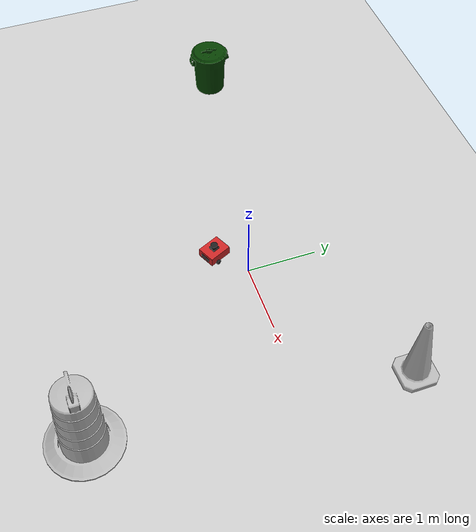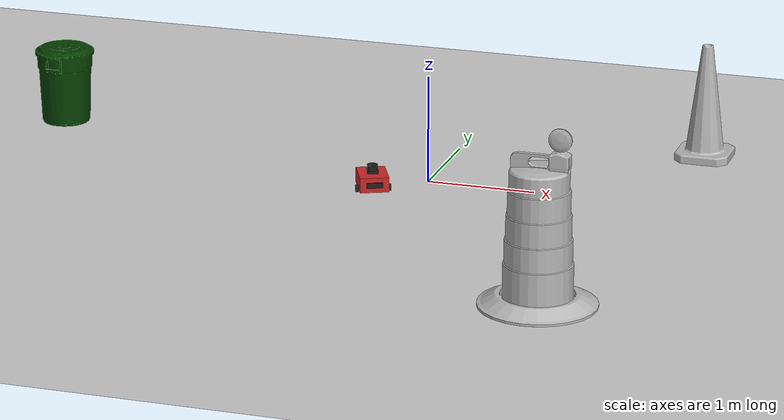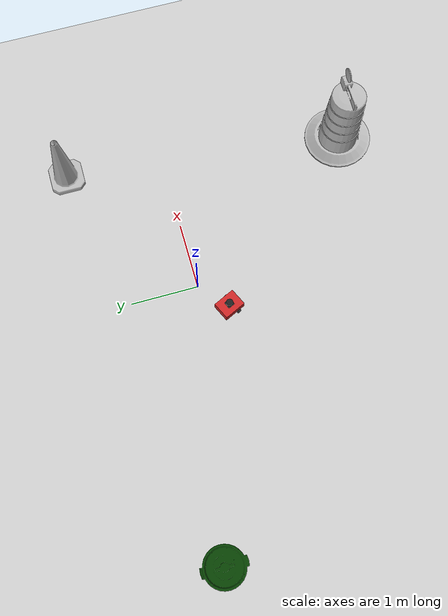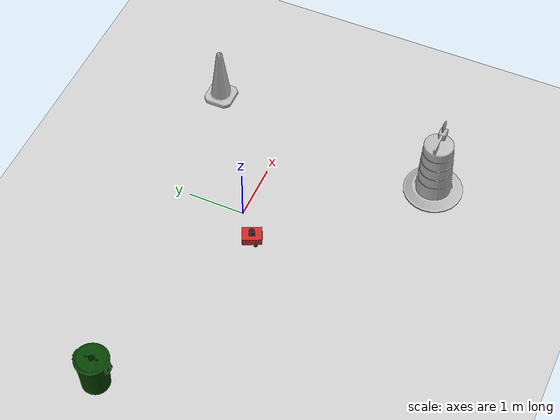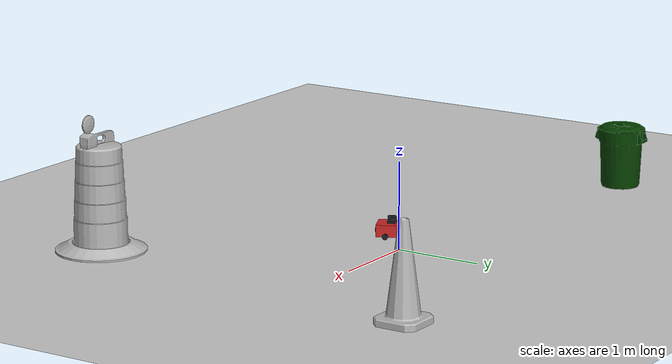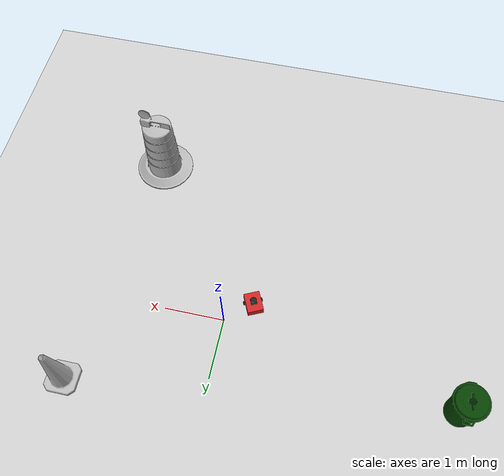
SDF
<sdf version="1.7">
 <world name="default">
  <light name="sun" type="directional">
   <pose>0 0 10 0 -0 0</pose>
   <diffuse>0.8 0.8 0.8 1</diffuse>
   <specular>0.2 0.2 0.2 1</specular>
   <attenuation>
    <range>1000</range>
    <constant>0.9</constant>
    <linear>0.01</linear>
    <quadratic>0.001</quadratic>
   </attenuation>
   <direction>-0.5 0.1 -0.9</direction>
   <spot><inner_angle>0</inner_angle><outer_angle>0</outer_angle><falloff>0</falloff></spot>
  </light>
  <model name="ground_plane">
   <static>1</static>
   <link name="link">
    <collision name="collision">
     <geometry><plane><normal>0 0 1</normal><size>100 100</size></plane></geometry>
     <surface><friction><ode><mu>100</mu><mu2>50</mu2></ode></friction></surface>
    </collision>
    <visual name="visual">
     <cast_shadows>0</cast_shadows>
     <geometry><plane><normal>0 0 1</normal><size>100 100</size></plane></geometry>
     <material>
      <script><uri>file://media/materials/scripts/gazebo.material</uri><name>Gazebo/Grey</name></script>
     </material>
    </visual>
   </link>
  </model>
  <gravity>0 0 -9.8</gravity>
  <magnetic_field>6e-06 2.3e-05 -4.2e-05</magnetic_field>
  <atmosphere type="adiabatic"/>
  <physics type="ode">
   <max_step_size>0.001</max_step_size>
   <real_time_factor>1</real_time_factor>
   <real_time_update_rate>1000</real_time_update_rate>
  </physics>
  <scene><ambient>0.4 0.4 0.4 1</ambient><background>0.7 0.7 0.7 1</background><shadows>1</shadows></scene>
  <audio><device>default</device></audio>
  <spherical_coordinates>
   <surface_model>EARTH_WGS84</surface_model>
   <latitude_deg>0</latitude_deg>
   <longitude_deg>0</longitude_deg>
   <elevation>0</elevation>
   <heading_deg>0</heading_deg>
  </spherical_coordinates>
  <model name="rrbot">
   <link name="base_link">
    <inertial>
     <pose>-0.060655 0 0.055759 0 -0 0</pose>
     <mass>1.45</mass>
     <inertia>
      <ixx>0.00727934</ixx>
      <ixy>0</ixy>
      <ixz>-0.00193237</ixz>
      <iyy>0.0202731</iyy>
      <iyz>0</iyz>
      <izz>0.020575</izz>
     </inertia>
    </inertial>
    <collision name="base_link_fixed_joint_lump__chassis_collision">
     <pose>-0.0585 0 0.059 0 -0 0</pose>
     <geometry><box><size>0.335 0.265 0.138</size></box></geometry>
    </collision>
    <collision name="base_link_fixed_joint_lump__camera_link_collision_1">
     <pose>0.114 0 0.059 0 -0 0</pose>
     <geometry><box><size>0.01 0.15 0.05</size></box></geometry>
    </collision>
    <collision name="base_link_fixed_joint_lump__caster_wheel_collision_2">
     <pose>-0.151 0 0.017 0 -0 0</pose>
     <geometry><sphere><radius>0.05</radius></sphere></geometry>
     <surface><friction><ode><mu>0.02</mu><mu2>0.02</mu2></ode></friction></surface>
    </collision>
    <collision name="base_link_fixed_joint_lump__lidar_base_link_collision_3">
     <pose>-0.0585 0 0.128 0 -0 0</pose>
     <geometry><box><size>0.1 0.1 0.05</size></box></geometry>
    </collision>
    <collision name="base_link_fixed_joint_lump__lidar_link_collision_4">
     <pose>-0.0585 0 0.153 0 -0 0</pose>
     <geometry><cylinder><length>0.1</length><radius>0.05</radius></cylinder></geometry>
    </collision>
    <visual name="base_link_fixed_joint_lump__chassis_visual">
     <pose>-0.0585 0 0.059 0 -0 0</pose>
     <geometry><box><size>0.335 0.265 0.138</size></box></geometry>
     <material>
      <script><name>Gazebo/Red</name><uri>file://media/materials/scripts/gazebo.material</uri></script>
     </material>
    </visual>
    <visual name="base_link_fixed_joint_lump__camera_link_visual_1">
     <pose>0.114 0 0.059 0 -0 0</pose>
     <geometry><box><size>0.01 0.15 0.05</size></box></geometry>
     <material>
      <script><name>Gazebo/Black</name><uri>file://media/materials/scripts/gazebo.material</uri></script>
     </material>
    </visual>
    <visual name="base_link_fixed_joint_lump__caster_wheel_visual_2">
     <pose>-0.151 0 0.017 0 -0 0</pose>
     <geometry><sphere><radius>0.05</radius></sphere></geometry>
     <material>
      <script><name>Gazebo/Black</name><uri>file://media/materials/scripts/gazebo.material</uri></script>
     </material>
    </visual>
    <visual name="base_link_fixed_joint_lump__lidar_base_link_visual_3">
     <pose>-0.0585 0 0.128 0 -0 0</pose>
     <geometry><box><size>0.1 0.1 0.05</size></box></geometry>
     <material>
      <script><name>Gazebo/Black</name><uri>file://media/materials/scripts/gazebo.material</uri></script>
     </material>
    </visual>
    <visual name="base_link_fixed_joint_lump__lidar_link_visual_4">
     <pose>-0.0585 0 0.153 0 -0 0</pose>
     <geometry><cylinder><length>0.1</length><radius>0.05</radius></cylinder></geometry>
     <material>
      <script><name>Gazebo/Black</name><uri>file://media/materials/scripts/gazebo.material</uri></script>
     </material>
    </visual>
    <sensor name="camera" type="camera">
     <update_rate>30</update_rate>
     <camera name="head">
      <horizontal_fov>1.39626</horizontal_fov>
      <image><width>800</width><height>800</height><format>R8G8B8</format></image>
      <clip><near>0.02</near><far>300</far></clip>
      <noise><type>gaussian</type><mean>0</mean><stddev>0.007</stddev></noise>
     </camera>
     <plugin name="camera_controller" filename="libgazebo_ros_camera.so">
      <alwaysOn>1</alwaysOn>
      <updateRate>0.0</updateRate>
      <cameraName>robotie/camera</cameraName>
      <imageTopicName>image_raw</imageTopicName>
      <cameraInfoTopicName>camera_info</cameraInfoTopicName>
      <frameName>camera_link</frameName>
     </plugin>
     <pose>0.114 0 0.059 0 -0 0</pose>
    </sensor>
    <sensor name="laser" type="ray">
     <visualize>1</visualize>
     <update_rate>10</update_rate>
     <ray>
      <scan>
       <horizontal>
        <samples>360</samples>
        <min_angle>-3.14</min_angle>
        <max_angle>3.14</max_angle>
        <resolution>1</resolution>
       </horizontal>
       <vertical><samples>1</samples><min_angle>0</min_angle><max_angle>0</max_angle></vertical>
      </scan>
      <range><min>0.3</min><max>12</max></range>
     </ray>
     <plugin name="laser_controller" filename="libgazebo_ros_ray_sensor.so">
      <ros><argument>~/out:=scan</argument></ros>
      <output_type>sensor_msgs/LaserScan</output_type>
      <frame_name>lidar_link</frame_name>
     </plugin>
     <pose>-0.0585 0 0.153 0 -0 0</pose>
    </sensor>
   </link>
   <joint name="left_wheel_joint" type="revolute">
    <pose relative_to="base_link">0 0.1485 0 -1.5708 0 0</pose>
    <parent>base_link</parent>
    <child>left_wheel</child>
    <axis>
     <xyz>0 0 1</xyz>
     <limit><lower>-1e+16</lower><upper>1e+16</upper></limit>
     <dynamics><spring_reference>0</spring_reference><spring_stiffness>0</spring_stiffness></dynamics>
    </axis>
   </joint>
   <link name="left_wheel">
    <pose relative_to="left_wheel_joint">0 0 0 0 -0 0</pose>
    <inertial>
     <mass>0.05</mass>
     <inertia>
      <ixx>1.64292e-05</ixx>
      <ixy>0</ixy>
      <ixz>0</ixz>
      <iyy>1.64292e-05</iyy>
      <iyz>0</iyz>
      <izz>2.7225e-05</izz>
     </inertia>
    </inertial>
    <collision name="left_wheel_collision">
     <geometry><sphere><radius>0.033</radius></sphere></geometry>
     <surface><friction><ode><mu>0.2</mu><mu2>0.2</mu2></ode></friction></surface>
    </collision>
    <visual name="left_wheel_visual">
     <geometry><cylinder><length>0.026</length><radius>0.033</radius></cylinder></geometry>
     <material>
      <script><name>Gazebo/Black</name><uri>file://media/materials/scripts/gazebo.material</uri></script>
     </material>
    </visual>
   </link>
   <joint name="right_wheel_joint" type="revolute">
    <pose relative_to="base_link">0 -0.1485 0 1.5708 -0 0</pose>
    <parent>base_link</parent>
    <child>right_wheel</child>
    <axis>
     <xyz>0 0 -1</xyz>
     <limit><lower>-1e+16</lower><upper>1e+16</upper></limit>
     <dynamics><spring_reference>0</spring_reference><spring_stiffness>0</spring_stiffness></dynamics>
    </axis>
   </joint>
   <link name="right_wheel">
    <pose relative_to="right_wheel_joint">0 0 0 0 -0 0</pose>
    <inertial>
     <mass>0.05</mass>
     <inertia>
      <ixx>1.64292e-05</ixx>
      <ixy>0</ixy>
      <ixz>0</ixz>
      <iyy>1.64292e-05</iyy>
      <iyz>0</iyz>
      <izz>2.7225e-05</izz>
     </inertia>
    </inertial>
    <collision name="right_wheel_collision">
     <geometry><sphere><radius>0.033</radius></sphere></geometry>
     <surface><friction><ode><mu>0.2</mu><mu2>0.2</mu2></ode></friction></surface>
    </collision>
    <visual name="right_wheel_visual">
     <geometry><cylinder><length>0.026</length><radius>0.033</radius></cylinder></geometry>
     <material>
      <script><name>Gazebo/Black</name><uri>file://media/materials/scripts/gazebo.material</uri></script>
     </material>
    </visual>
   </link>
   <static>0</static>
   <plugin name="gazebo_ros2_control" filename="libgazebo_ros2_control.so">
    <parameters>/home/goda/tutorials_ws/05_ws/install/robotie/share/robotie/config/controllers.yaml</parameters>
   </plugin>
   <pose>-0.398058 -0.4136 0.032995 3.1e-05 3.6e-05 -1.13491</pose>
  </model>
  <model name="Construction Cone">
   <link name="link">
    <collision name="collision">
     <geometry>
      <mesh><scale>10 10 10</scale><uri>model://construction_cone/meshes/construction_cone.dae</uri></mesh>
     </geometry>
    </collision>
    <visual name="visual">
     <geometry>
      <mesh><scale>10 10 10</scale><uri>model://construction_cone/meshes/construction_cone.dae</uri></mesh>
     </geometry>
    </visual>
    <inertial>
     <inertia><ixx>1</ixx><ixy>0</ixy><ixz>0</ixz><iyy>1</iyy><iyz>0</iyz><izz>1</izz></inertia>
     <mass>1</mass>
    </inertial>
   </link>
   <pose>2.24509 1.47002 -0 0 -1e-06 0</pose>
  </model>
  <model name="Construction Barrel">
   <link name="link">
    <inertial>
     <pose>0 0 0.4 0 -0 0</pose>
     <mass>500</mass>
     <inertia><ixx>51.2096</ixx><iyy>51.2096</iyy><izz>25</izz><ixy>0</ixy><ixz>0</ixz><iyz>0</iyz></inertia>
    </inertial>
    <collision name="collision">
     <geometry><mesh><uri>model://construction_barrel/meshes/construction_barrel.dae</uri></mesh></geometry>
    </collision>
    <visual name="visual">
     <geometry><mesh><uri>model://construction_barrel/meshes/construction_barrel.dae</uri></mesh></geometry>
    </visual>
   </link>
   <pose>1.78577 -2.74172 1e-06 2e-06 3e-06 -6e-06</pose>
  </model>
  <model name="first_2015_trash_can">
   <link name="link">
    <inertial>
     <pose>0 0 0.3683 0 -0 0</pose>
     <mass>4.83076</mass>
     <inertia>
      <ixx>0.281534</ixx>
      <ixy>0</ixy>
      <ixz>0</ixz>
      <iyy>0.281534</iyy>
      <iyz>0</iyz>
      <izz>0.126223</izz>
     </inertia>
    </inertial>
    <visual name="visual">
     <geometry><mesh><uri>model://first_2015_trash_can/meshes/trash_can.dae</uri></mesh></geometry>
    </visual>
    <collision name="collision">
     <geometry><mesh><uri>model://first_2015_trash_can/meshes/trash_can.dae</uri></mesh></geometry>
    </collision>
   </link>
   <pose>-3.86775 0.698786 -3e-06 4e-06 6e-06 -0.000215</pose>
  </model>
 </world>
</sdf>
